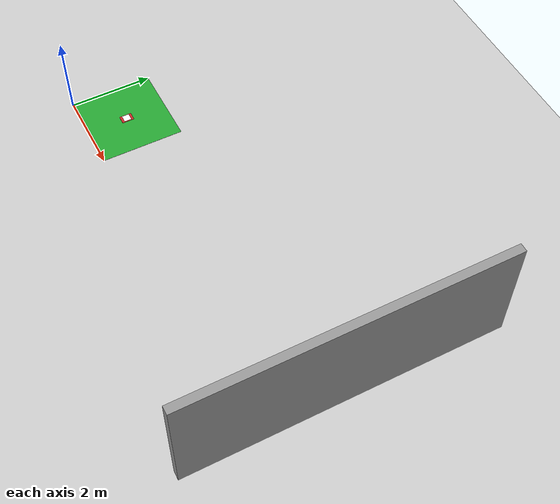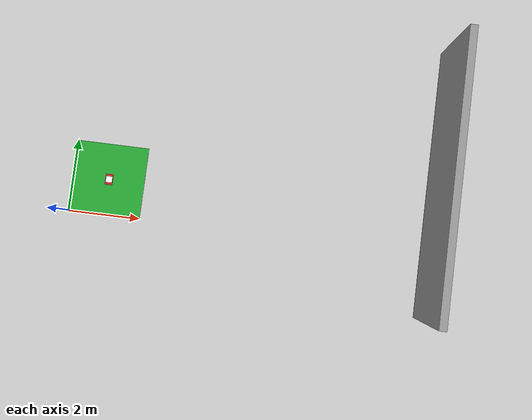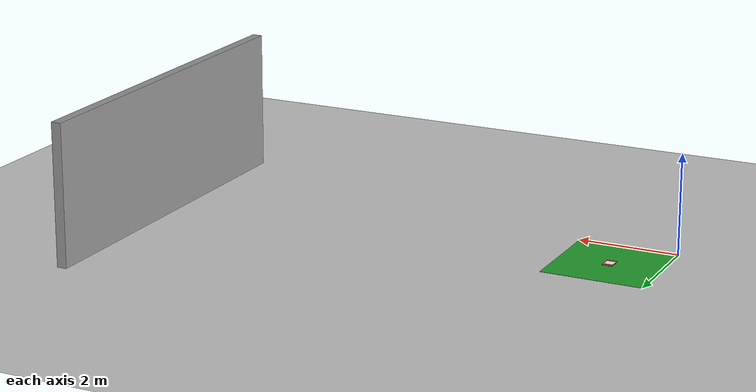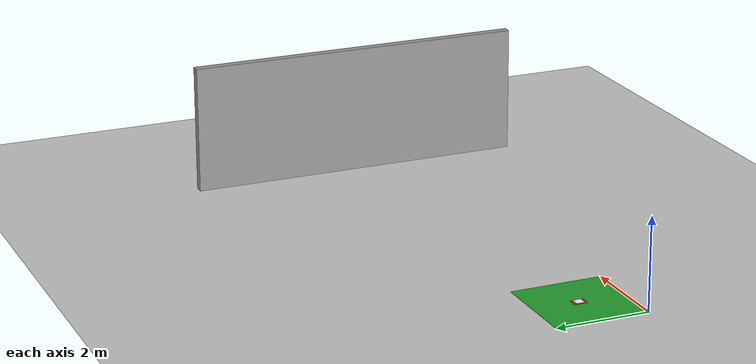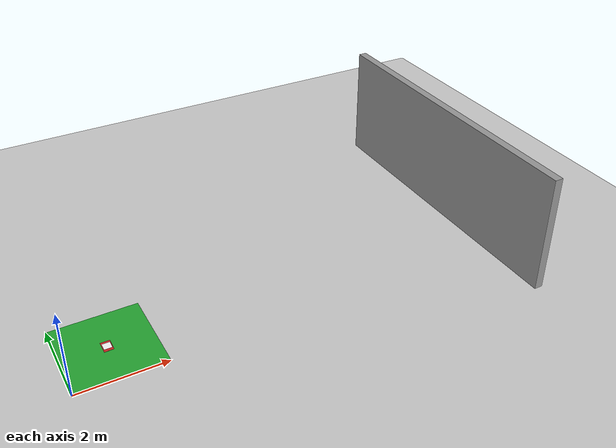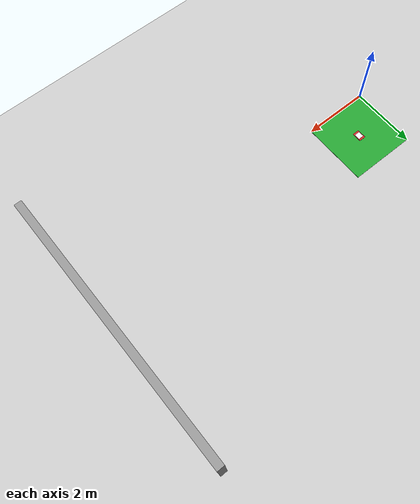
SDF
<sdf version="1.7">
 <world name="default">
  <scene><shadows>false</shadows></scene>
  <physics name="normal" type="ode">
   <real_time_update_rate>10000</real_time_update_rate>
   <max_step_size>0.005</max_step_size>
   <real_time_factor>100</real_time_factor>
  </physics>
  <model name="ground_plane">
   <static>1</static>
   <link name="link">
    <collision name="collision">
     <geometry><plane><normal>0 0 1</normal><size>100 100</size></plane></geometry>
     <surface><friction><ode><mu>100</mu><mu2>50</mu2></ode></friction></surface>
    </collision>
    <visual name="visual">
     <cast_shadows>0</cast_shadows>
     <geometry><plane><normal>0 0 1</normal><size>100 100</size></plane></geometry>
     <material>
      <script><uri>file://media/materials/scripts/gazebo.material</uri><name>Gazebo/Grey</name></script>
     </material>
    </visual>
   </link>
  </model>
  <light name="sun" type="directional">
   <pose>0 0 10 0 -0 0</pose>
   <diffuse>0.8 0.8 0.8 1</diffuse>
   <specular>0.2 0.2 0.2 1</specular>
   <attenuation>
    <range>1000</range>
    <constant>0.9</constant>
    <linear>0.01</linear>
    <quadratic>0.001</quadratic>
   </attenuation>
   <direction>-0.5 0.1 -0.9</direction>
   <spot><inner_angle>0</inner_angle><outer_angle>0</outer_angle><falloff>0</falloff></spot>
  </light>
  <model name="marker0">
   <frame name="marker_0::__model__" attached_to="marker_0::marker">
    <pose relative_to="__model__">0 0 0 0 -0 0</pose>
   </frame>
   <link name="marker_0::marker">
    <pose relative_to="marker_0::__model__">0 0 0 0 -0 0</pose>
    <visual name="visual">
     <geometry><box><size>0.1778 0.1778 1e-05</size></box></geometry>
     <material>
      <script>
       <uri>model://marker_0/materials/scripts</uri>
       <uri>model://marker_0/materials/textures</uri>
       <name>ArucoVisualMarker0/Marker</name>
      </script>
      <ambient>1 1 1 1</ambient>
      <diffuse>1 1 1 1</diffuse>
      <specular>0 0 0 1</specular>
      <emissive>1 1 1 0</emissive>
      <shader type="vertex"><normal_map>__default__</normal_map></shader>
     </material>
    </visual>
    <collision name="collision"><geometry><box><size>0.1778 0.1778 1e-05</size></box></geometry></collision>
   </link>
   <link name="marker_0::marker_pad">
    <pose relative_to="marker_0::marker">0 0 -0.001 0 -0 0</pose>
    <visual name="visual">
     <geometry><box><size>0.1778 0.1778 1e-05</size></box></geometry>
     <material>
      <lighting>1</lighting>
      <script><uri>file://media/materials/scripts/gazebo.material</uri><name>Gazebo/White</name></script>
      <ambient>0.3 0.3 0.3 1</ambient>
      <diffuse>0.7 0.7 0.7 1</diffuse>
      <specular>0.01 0.01 0.01 1</specular>
      <emissive>1 1 1 0</emissive>
      <shader type="vertex"><normal_map>__default__</normal_map></shader>
     </material>
    </visual>
    <collision name="collision"><geometry><box><size>0.1778 0.1778 1e-05</size></box></geometry></collision>
   </link>
   <joint name="marker_0::marker_JOINT_marker_pad" type="revolute">
    <parent>marker_0::marker</parent>
    <child>marker_0::marker_pad</child>
    <axis>
     <xyz>0 0 1</xyz>
     <limit><upper>0</upper><lower>0</lower></limit>
     <dynamics><spring_reference>0</spring_reference><spring_stiffness>0</spring_stiffness></dynamics>
    </axis>
   </joint>
   <static>1</static>
   <pose>1 1 0.015 -2e-06 2e-06 -2e-06</pose>
  </model>
  <gravity>0 0 -9.8</gravity>
  <magnetic_field>6e-06 2.3e-05 -4.2e-05</magnetic_field>
  <atmosphere type="adiabatic"/>
  <scene><ambient>0.4 0.4 0.4 1</ambient><background>0.7 0.7 0.7 1</background><shadows>false</shadows></scene>
  <spherical_coordinates>
   <surface_model>EARTH_WGS84</surface_model>
   <latitude_deg>0</latitude_deg>
   <longitude_deg>0</longitude_deg>
   <elevation>0</elevation>
   <heading_deg>0</heading_deg>
  </spherical_coordinates>
  <model name="grey_wall_clone_clone">
   <static>1</static>
   <link name="link">
    <pose>0 0 1.4 0 -0 0</pose>
    <collision name="collision"><geometry><box><size>7.5 0.2 2.8</size></box></geometry></collision>
    <visual name="visual">
     <cast_shadows>0</cast_shadows>
     <geometry><box><size>7.5 0.2 2.8</size></box></geometry>
     <material>
      <script>
       <uri>model://grey_wall/materials/scripts</uri>
       <uri>model://grey_wall/materials/textures</uri>
       <name>vrc/grey_wall</name>
      </script>
     </material>
    </visual>
   </link>
   <pose>10 2 0 0 -0 1.57</pose>
  </model>
  <model name="ladowisko">
   <link name="link_3">
    <inertial>
     <mass>1</mass>
     <inertia>
      <ixx>0.166667</ixx>
      <ixy>0</ixy>
      <ixz>0</ixz>
      <iyy>0.166667</iyy>
      <iyz>0</iyz>
      <izz>0.166667</izz>
     </inertia>
    </inertial>
    <pose>0 0 -0.0025 0 -0 0</pose>
    <kinematic>1</kinematic>
    <visual name="visual">
     <geometry><box><size>2 2 0.005</size></box></geometry>
     <material>
      <lighting>1</lighting>
      <script><uri>file://media/materials/scripts/gazebo.material</uri><name>Gazebo/Green</name></script>
      <shader type="pixel"><normal_map>__default__</normal_map></shader>
      <ambient>0.2 0.5 0.3 0.5</ambient>
      <diffuse>0 0.5 0 0.5</diffuse>
      <specular>0 0.5 0 0.3</specular>
      <emissive>0 0.5 0 0.5</emissive>
     </material>
    </visual>
    <collision name="collision">
     <geometry><box><size>2 2 0.005</size></box></geometry>
     <surface>
      <friction>
       <ode><mu>1</mu><mu2>1</mu2><fdir1>0 0 0</fdir1><slip1>0</slip1><slip2>0</slip2></ode>
       <torsional>
        <coefficient>1</coefficient>
        <patch_radius>0</patch_radius>
        <surface_radius>0</surface_radius>
        <use_patch_radius>1</use_patch_radius>
        <ode><slip>0</slip></ode>
       </torsional>
      </friction>
      <bounce><restitution_coefficient>0</restitution_coefficient><threshold>1e+06</threshold></bounce>
      <contact>
       <collide_without_contact>0</collide_without_contact>
       <collide_without_contact_bitmask>1</collide_without_contact_bitmask>
       <collide_bitmask>1</collide_bitmask>
       <ode>
        <soft_cfm>0</soft_cfm>
        <soft_erp>0.2</soft_erp>
        <kp>1e+13</kp>
        <kd>1</kd>
        <max_vel>0.01</max_vel>
        <min_depth>0</min_depth>
       </ode>
       <bullet>
        <split_impulse>1</split_impulse>
        <split_impulse_penetration_threshold>-0.01</split_impulse_penetration_threshold>
        <soft_cfm>0</soft_cfm>
        <soft_erp>0.2</soft_erp>
        <kp>1e+13</kp>
        <kd>1</kd>
       </bullet>
      </contact>
     </surface>
    </collision>
   </link>
   <link name="link_5">
    <inertial>
     <mass>1</mass>
     <inertia>
      <ixx>0.166667</ixx>
      <ixy>0</ixy>
      <ixz>0</ixz>
      <iyy>0.166667</iyy>
      <iyz>0</iyz>
      <izz>0.166667</izz>
     </inertia>
     <pose>0.05 0 0 0 -0 0</pose>
    </inertial>
    <pose>0 0 0.0025 0 -0 0</pose>
    <kinematic>1</kinematic>
    <visual name="visual">
     <geometry><box><size>0.21 0.297 0.005</size></box></geometry>
     <material>
      <lighting>0</lighting>
      <script><uri>file://media/materials/scripts/gazebo.material</uri><name>Gazebo/Red</name></script>
      <shader type="pixel"><normal_map>__default__</normal_map></shader>
      <ambient>1 1 1 1</ambient>
      <diffuse>1 1 1 1</diffuse>
      <specular>1 1 1 1</specular>
      <emissive>1 1 1 1</emissive>
     </material>
    </visual>
    <collision name="collision">
     <geometry><box><size>0.21 0.297 0.005</size></box></geometry>
     <surface>
      <friction>
       <ode><mu>1</mu><mu2>1</mu2><fdir1>0 0 0</fdir1><slip1>0</slip1><slip2>0</slip2></ode>
       <torsional>
        <coefficient>1</coefficient>
        <patch_radius>0</patch_radius>
        <surface_radius>0</surface_radius>
        <use_patch_radius>1</use_patch_radius>
        <ode><slip>0</slip></ode>
       </torsional>
      </friction>
      <bounce><restitution_coefficient>0</restitution_coefficient><threshold>1e+06</threshold></bounce>
      <contact>
       <collide_without_contact>0</collide_without_contact>
       <collide_without_contact_bitmask>1</collide_without_contact_bitmask>
       <collide_bitmask>1</collide_bitmask>
       <ode>
        <soft_cfm>0</soft_cfm>
        <soft_erp>0.2</soft_erp>
        <kp>1e+13</kp>
        <kd>1</kd>
        <max_vel>0.01</max_vel>
        <min_depth>0</min_depth>
       </ode>
       <bullet>
        <split_impulse>1</split_impulse>
        <split_impulse_penetration_threshold>-0.01</split_impulse_penetration_threshold>
        <soft_cfm>0</soft_cfm>
        <soft_erp>0.2</soft_erp>
        <kp>1e+13</kp>
        <kd>1</kd>
       </bullet>
      </contact>
     </surface>
    </collision>
   </link>
   <static>1</static>
   <pose>1 1 0.0025 0 -0 0</pose>
  </model>
  <plugin name="gazebo_ros_state" filename="libgazebo_ros_state.so">
   <ros><namespace>/gazebo</namespace></ros>
  </plugin>
 </world>
</sdf>
